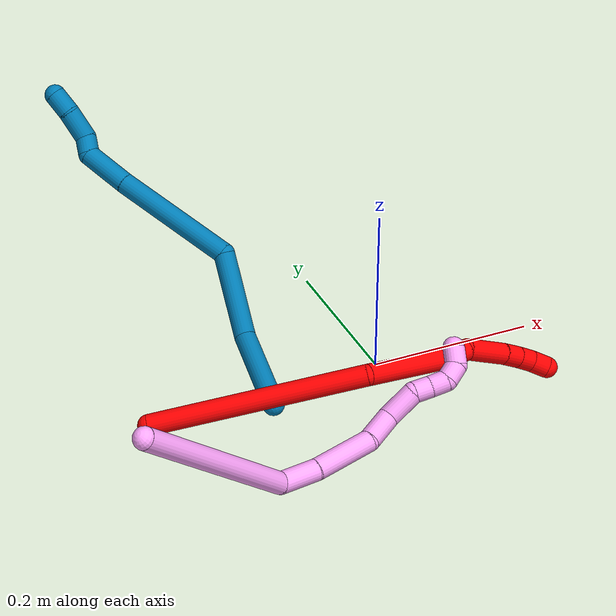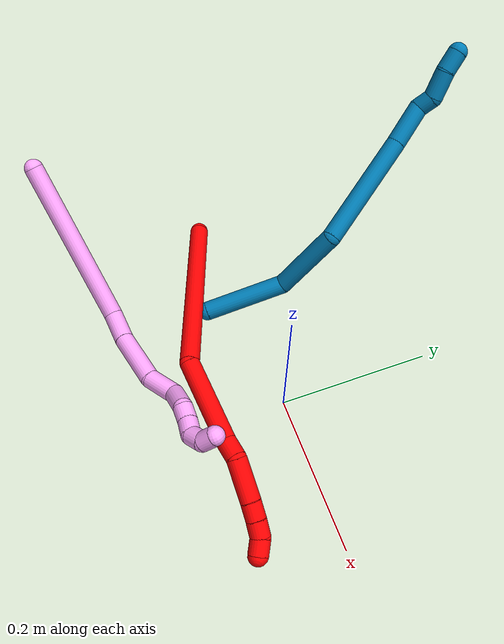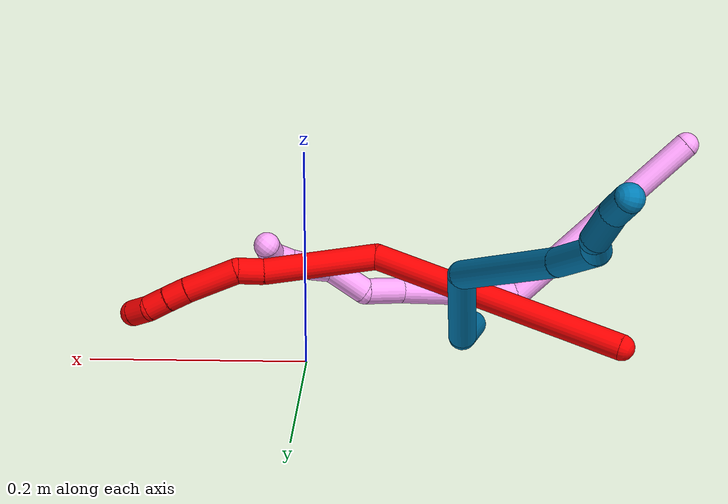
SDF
<sdf version="1.7">
 <world name="default">
  <model name="2">
   <static>0</static>
   <link name="2">
    <collision name="collision-cylinder-e_1_1_4">
     <pose>0.022367 -0.010055 -0.12348 3.06034 0.178619 2.28936</pose>
     <geometry><cylinder><radius>0.0125</radius><length>0.251782</length></cylinder></geometry>
     <surface>
      <friction><ode><mu>1.16</mu><mu2>1.16</mu2><slip1>0</slip1><slip2>0</slip2></ode></friction>
      <contact><ode><kp>1e+06</kp><kd>1</kd><max_vel>0</max_vel><min_depth>0.001</min_depth></ode></contact>
     </surface>
    </collision>
    <visual name="visual-cylinder-e_1_1_4">
     <pose>0.022367 -0.010055 -0.12348 3.06034 0.178619 2.28936</pose>
     <geometry><cylinder><radius>0.0125</radius><length>0.251782</length></cylinder></geometry>
     <material><ambient>1 0 0 1</ambient></material>
    </visual>
    <collision name="collision-cylinder-e_2_4_5">
     <pose>0.081506 -0.02117 -0.286753 3.11496 0.745778 3.07354</pose>
     <geometry><cylinder><radius>0.0125</radius><length>0.108385</length></cylinder></geometry>
     <surface>
      <friction><ode><mu>1.16</mu><mu2>1.16</mu2><slip1>0</slip1><slip2>0</slip2></ode></friction>
      <contact><ode><kp>1e+06</kp><kd>1</kd><max_vel>0</max_vel><min_depth>0.001</min_depth></ode></contact>
     </surface>
    </collision>
    <visual name="visual-cylinder-e_2_4_5">
     <pose>0.081506 -0.02117 -0.286753 3.11496 0.745778 3.07354</pose>
     <geometry><cylinder><radius>0.0125</radius><length>0.108385</length></cylinder></geometry>
     <material><ambient>1 0 0 1</ambient></material>
    </visual>
    <collision name="collision-cylinder-e_3_5_6">
     <pose>0.126254 -0.025073 -0.335954 2.84813 0.681747 2.35204</pose>
     <geometry><cylinder><radius>0.0125</radius><length>0.025313</length></cylinder></geometry>
     <surface>
      <friction><ode><mu>1.16</mu><mu2>1.16</mu2><slip1>0</slip1><slip2>0</slip2></ode></friction>
      <contact><ode><kp>1e+06</kp><kd>1</kd><max_vel>0</max_vel><min_depth>0.001</min_depth></ode></contact>
     </surface>
    </collision>
    <visual name="visual-cylinder-e_3_5_6">
     <pose>0.126254 -0.025073 -0.335954 2.84813 0.681747 2.35204</pose>
     <geometry><cylinder><radius>0.0125</radius><length>0.025313</length></cylinder></geometry>
     <material><ambient>1 0 0 1</ambient></material>
    </visual>
    <collision name="collision-cylinder-e_4_6_7">
     <pose>0.15253 -0.021431 -0.362414 -2.77824 0.786931 -2.30833</pose>
     <geometry><cylinder><radius>0.0125</radius><length>0.051683</length></cylinder></geometry>
     <surface>
      <friction><ode><mu>1.16</mu><mu2>1.16</mu2><slip1>0</slip1><slip2>0</slip2></ode></friction>
      <contact><ode><kp>1e+06</kp><kd>1</kd><max_vel>0</max_vel><min_depth>0.001</min_depth></ode></contact>
     </surface>
    </collision>
    <visual name="visual-cylinder-e_4_6_7">
     <pose>0.15253 -0.021431 -0.362414 -2.77824 0.786931 -2.30833</pose>
     <geometry><cylinder><radius>0.0125</radius><length>0.051683</length></cylinder></geometry>
     <material><ambient>1 0 0 1</ambient></material>
    </visual>
    <collision name="collision-cylinder-e_5_7_8">
     <pose>0.178447 -0.011502 -0.386229 -2.67039 0.787236 -2.09335</pose>
     <geometry><cylinder><radius>0.0125</radius><length>0.021504</length></cylinder></geometry>
     <surface>
      <friction><ode><mu>1.16</mu><mu2>1.16</mu2><slip1>0</slip1><slip2>0</slip2></ode></friction>
      <contact><ode><kp>1e+06</kp><kd>1</kd><max_vel>0</max_vel><min_depth>0.001</min_depth></ode></contact>
     </surface>
    </collision>
    <visual name="visual-cylinder-e_5_7_8">
     <pose>0.178447 -0.011502 -0.386229 -2.67039 0.787236 -2.09335</pose>
     <geometry><cylinder><radius>0.0125</radius><length>0.021504</length></cylinder></geometry>
     <material><ambient>1 0 0 1</ambient></material>
    </visual>
    <collision name="collision-cylinder-e_6_8_9">
     <pose>0.193201 -0.004169 -0.399595 -2.60947 0.749843 -1.93025</pose>
     <geometry><cylinder><radius>0.0125</radius><length>0.020945</length></cylinder></geometry>
     <surface>
      <friction><ode><mu>1.16</mu><mu2>1.16</mu2><slip1>0</slip1><slip2>0</slip2></ode></friction>
      <contact><ode><kp>1e+06</kp><kd>1</kd><max_vel>0</max_vel><min_depth>0.001</min_depth></ode></contact>
     </surface>
    </collision>
    <visual name="visual-cylinder-e_6_8_9">
     <pose>0.193201 -0.004169 -0.399595 -2.60947 0.749843 -1.93025</pose>
     <geometry><cylinder><radius>0.0125</radius><length>0.020945</length></cylinder></geometry>
     <material><ambient>1 0 0 1</ambient></material>
    </visual>
    <collision name="collision-cylinder-e_7_9_2">
     <pose>0.203844 0.004841 -0.414286 -2.57709 0.35113 -1.09797</pose>
     <geometry><cylinder><radius>0.0125</radius><length>0.020388</length></cylinder></geometry>
     <surface>
      <friction><ode><mu>1.16</mu><mu2>1.16</mu2><slip1>0</slip1><slip2>0</slip2></ode></friction>
      <contact><ode><kp>1e+06</kp><kd>1</kd><max_vel>0</max_vel><min_depth>0.001</min_depth></ode></contact>
     </surface>
    </collision>
    <visual name="visual-cylinder-e_7_9_2">
     <pose>0.203844 0.004841 -0.414286 -2.57709 0.35113 -1.09797</pose>
     <geometry><cylinder><radius>0.0125</radius><length>0.020388</length></cylinder></geometry>
     <material><ambient>1 0 0 1</ambient></material>
    </visual>
    <collision name="collision-sphere-2">
     <pose>0.207351 0.009962 -0.422373 0 -0 0</pose>
     <geometry><sphere><radius>0.0125</radius></sphere></geometry>
     <surface>
      <friction><ode><mu>1.16</mu><mu2>1.16</mu2><slip1>0</slip1><slip2>0</slip2></ode></friction>
      <contact><ode><kp>1e+06</kp><kd>1</kd><max_vel>0</max_vel><min_depth>0.001</min_depth></ode></contact>
     </surface>
    </collision>
    <visual name="visual-sphere-2">
     <pose>0.207351 0.009962 -0.422373 0 -0 0</pose>
     <geometry><sphere><radius>0.0125</radius></sphere></geometry>
     <material><ambient>1 0 0 1</ambient></material>
    </visual>
    <collision name="collision-sphere-9">
     <pose>0.200338 -0.00028 -0.406199 0 -0 0</pose>
     <geometry><sphere><radius>0.0125</radius></sphere></geometry>
     <surface>
      <friction><ode><mu>1.16</mu><mu2>1.16</mu2><slip1>0</slip1><slip2>0</slip2></ode></friction>
      <contact><ode><kp>1e+06</kp><kd>1</kd><max_vel>0</max_vel><min_depth>0.001</min_depth></ode></contact>
     </surface>
    </collision>
    <visual name="visual-sphere-9">
     <pose>0.200338 -0.00028 -0.406199 0 -0 0</pose>
     <geometry><sphere><radius>0.0125</radius></sphere></geometry>
     <material><ambient>1 0 0 1</ambient></material>
    </visual>
    <collision name="collision-sphere-4">
     <pose>0.044734 -0.02011 -0.246959 0 -0 0</pose>
     <geometry><sphere><radius>0.0125</radius></sphere></geometry>
     <surface>
      <friction><ode><mu>1.16</mu><mu2>1.16</mu2><slip1>0</slip1><slip2>0</slip2></ode></friction>
      <contact><ode><kp>1e+06</kp><kd>1</kd><max_vel>0</max_vel><min_depth>0.001</min_depth></ode></contact>
     </surface>
    </collision>
    <visual name="visual-sphere-4">
     <pose>0.044734 -0.02011 -0.246959 0 -0 0</pose>
     <geometry><sphere><radius>0.0125</radius></sphere></geometry>
     <material><ambient>1 0 0 1</ambient></material>
    </visual>
    <collision name="collision-sphere-1">
     <geometry><sphere><radius>0.0125</radius></sphere></geometry>
     <surface>
      <friction><ode><mu>1.16</mu><mu2>1.16</mu2><slip1>0</slip1><slip2>0</slip2></ode></friction>
      <contact><ode><kp>1e+06</kp><kd>1</kd><max_vel>0</max_vel><min_depth>0.001</min_depth></ode></contact>
     </surface>
    </collision>
    <visual name="visual-sphere-1">
     <geometry><sphere><radius>0.0125</radius></sphere></geometry>
     <material><ambient>1 0 0 1</ambient></material>
    </visual>
    <collision name="collision-sphere-8">
     <pose>0.186064 -0.008057 -0.392991 0 -0 0</pose>
     <geometry><sphere><radius>0.0125</radius></sphere></geometry>
     <surface>
      <friction><ode><mu>1.16</mu><mu2>1.16</mu2><slip1>0</slip1><slip2>0</slip2></ode></friction>
      <contact><ode><kp>1e+06</kp><kd>1</kd><max_vel>0</max_vel><min_depth>0.001</min_depth></ode></contact>
     </surface>
    </collision>
    <visual name="visual-sphere-8">
     <pose>0.186064 -0.008057 -0.392991 0 -0 0</pose>
     <geometry><sphere><radius>0.0125</radius></sphere></geometry>
     <material><ambient>1 0 0 1</ambient></material>
    </visual>
    <collision name="collision-sphere-5">
     <pose>0.118278 -0.02223 -0.326546 0 -0 0</pose>
     <geometry><sphere><radius>0.0125</radius></sphere></geometry>
     <surface>
      <friction><ode><mu>1.16</mu><mu2>1.16</mu2><slip1>0</slip1><slip2>0</slip2></ode></friction>
      <contact><ode><kp>1e+06</kp><kd>1</kd><max_vel>0</max_vel><min_depth>0.001</min_depth></ode></contact>
     </surface>
    </collision>
    <visual name="visual-sphere-5">
     <pose>0.118278 -0.02223 -0.326546 0 -0 0</pose>
     <geometry><sphere><radius>0.0125</radius></sphere></geometry>
     <material><ambient>1 0 0 1</ambient></material>
    </visual>
    <collision name="collision-sphere-6">
     <pose>0.134229 -0.027915 -0.345361 0 -0 0</pose>
     <geometry><sphere><radius>0.0125</radius></sphere></geometry>
     <surface>
      <friction><ode><mu>1.16</mu><mu2>1.16</mu2><slip1>0</slip1><slip2>0</slip2></ode></friction>
      <contact><ode><kp>1e+06</kp><kd>1</kd><max_vel>0</max_vel><min_depth>0.001</min_depth></ode></contact>
     </surface>
    </collision>
    <visual name="visual-sphere-6">
     <pose>0.134229 -0.027915 -0.345361 0 -0 0</pose>
     <geometry><sphere><radius>0.0125</radius></sphere></geometry>
     <material><ambient>1 0 0 1</ambient></material>
    </visual>
    <collision name="collision-sphere-7">
     <pose>0.170831 -0.014947 -0.379468 0 -0 0</pose>
     <geometry><sphere><radius>0.0125</radius></sphere></geometry>
     <surface>
      <friction><ode><mu>1.16</mu><mu2>1.16</mu2><slip1>0</slip1><slip2>0</slip2></ode></friction>
      <contact><ode><kp>1e+06</kp><kd>1</kd><max_vel>0</max_vel><min_depth>0.001</min_depth></ode></contact>
     </surface>
    </collision>
    <visual name="visual-sphere-7">
     <pose>0.170831 -0.014947 -0.379468 0 -0 0</pose>
     <geometry><sphere><radius>0.0125</radius></sphere></geometry>
     <material><ambient>1 0 0 1</ambient></material>
    </visual>
    <inertial>
     <pose>0.075169 -0.013609 -0.229051 0 -0 0</pose>
     <mass>0.5</mass>
     <inertia>
      <ixx>4.8e-05</ixx>
      <ixy>0</ixy>
      <ixz>0</ixz>
      <iyy>0.002008</iyy>
      <iyz>0</iyz>
      <izz>-0.000255</izz>
     </inertia>
    </inertial>
   </link>
   <pose>-0.290626 -0.018772 0.011495 -1.86363 0.496696 0.87276</pose>
  </model>
  <model name="4">
   <static>0</static>
   <link name="4">
    <collision name="collision-cylinder-e_1_1_4">
     <pose>0.017751 0.008424 -0.108234 -3.06392 0.162075 -2.24909</pose>
     <geometry><cylinder><radius>0.0125</radius><length>0.220007</length></cylinder></geometry>
     <surface>
      <friction><ode><mu>1.16</mu><mu2>1.16</mu2><slip1>0</slip1><slip2>0</slip2></ode></friction>
      <contact><ode><kp>1e+06</kp><kd>1</kd><max_vel>0</max_vel><min_depth>0.001</min_depth></ode></contact>
     </surface>
    </collision>
    <visual name="visual-cylinder-e_1_1_4">
     <pose>0.017751 0.008424 -0.108234 -3.06392 0.162075 -2.24909</pose>
     <geometry><cylinder><radius>0.0125</radius><length>0.220007</length></cylinder></geometry>
     <material><ambient>1 0.65098 0.996078 1</ambient></material>
    </visual>
    <collision name="collision-cylinder-e_2_4_5">
     <pose>0.052619 0.021267 -0.229801 -2.82155 0.883674 -2.48394</pose>
     <geometry><cylinder><radius>0.0125</radius><length>0.044284</length></cylinder></geometry>
     <surface>
      <friction><ode><mu>1.16</mu><mu2>1.16</mu2><slip1>0</slip1><slip2>0</slip2></ode></friction>
      <contact><ode><kp>1e+06</kp><kd>1</kd><max_vel>0</max_vel><min_depth>0.001</min_depth></ode></contact>
     </surface>
    </collision>
    <visual name="visual-cylinder-e_2_4_5">
     <pose>0.052619 0.021267 -0.229801 -2.82155 0.883674 -2.48394</pose>
     <geometry><cylinder><radius>0.0125</radius><length>0.044284</length></cylinder></geometry>
     <material><ambient>1 0.65098 0.996078 1</ambient></material>
    </visual>
    <collision name="collision-cylinder-e_3_5_6">
     <pose>0.096786 0.037848 -0.263599 -2.6054 0.849065 -2.04941</pose>
     <geometry><cylinder><radius>0.0125</radius><length>0.072068</length></cylinder></geometry>
     <surface>
      <friction><ode><mu>1.16</mu><mu2>1.16</mu2><slip1>0</slip1><slip2>0</slip2></ode></friction>
      <contact><ode><kp>1e+06</kp><kd>1</kd><max_vel>0</max_vel><min_depth>0.001</min_depth></ode></contact>
     </surface>
    </collision>
    <visual name="visual-cylinder-e_3_5_6">
     <pose>0.096786 0.037848 -0.263599 -2.6054 0.849065 -2.04941</pose>
     <geometry><cylinder><radius>0.0125</radius><length>0.072068</length></cylinder></geometry>
     <material><ambient>1 0.65098 0.996078 1</ambient></material>
    </visual>
    <collision name="collision-cylinder-e_4_6_7">
     <pose>0.135895 0.06347 -0.294251 -2.21862 0.620346 -1.14502</pose>
     <geometry><cylinder><radius>0.0125</radius><length>0.04149</length></cylinder></geometry>
     <surface>
      <friction><ode><mu>1.16</mu><mu2>1.16</mu2><slip1>0</slip1><slip2>0</slip2></ode></friction>
      <contact><ode><kp>1e+06</kp><kd>1</kd><max_vel>0</max_vel><min_depth>0.001</min_depth></ode></contact>
     </surface>
    </collision>
    <visual name="visual-cylinder-e_4_6_7">
     <pose>0.135895 0.06347 -0.294251 -2.21862 0.620346 -1.14502</pose>
     <geometry><cylinder><radius>0.0125</radius><length>0.04149</length></cylinder></geometry>
     <material><ambient>1 0.65098 0.996078 1</ambient></material>
    </visual>
    <collision name="collision-cylinder-e_5_7_8">
     <pose>0.166492 0.083304 -0.305696 -1.76585 1.23365 -1.42391</pose>
     <geometry><cylinder><radius>0.0125</radius><length>0.039288</length></cylinder></geometry>
     <surface>
      <friction><ode><mu>1.16</mu><mu2>1.16</mu2><slip1>0</slip1><slip2>0</slip2></ode></friction>
      <contact><ode><kp>1e+06</kp><kd>1</kd><max_vel>0</max_vel><min_depth>0.001</min_depth></ode></contact>
     </surface>
    </collision>
    <visual name="visual-cylinder-e_5_7_8">
     <pose>0.166492 0.083304 -0.305696 -1.76585 1.23365 -1.42391</pose>
     <geometry><cylinder><radius>0.0125</radius><length>0.039288</length></cylinder></geometry>
     <material><ambient>1 0.65098 0.996078 1</ambient></material>
    </visual>
    <collision name="collision-cylinder-e_6_8_9">
     <pose>0.193544 0.090982 -0.312537 -2.91229 0.978301 -2.71548</pose>
     <geometry><cylinder><radius>0.0125</radius><length>0.020525</length></cylinder></geometry>
     <surface>
      <friction><ode><mu>1.16</mu><mu2>1.16</mu2><slip1>0</slip1><slip2>0</slip2></ode></friction>
      <contact><ode><kp>1e+06</kp><kd>1</kd><max_vel>0</max_vel><min_depth>0.001</min_depth></ode></contact>
     </surface>
    </collision>
    <visual name="visual-cylinder-e_6_8_9">
     <pose>0.193544 0.090982 -0.312537 -2.91229 0.978301 -2.71548</pose>
     <geometry><cylinder><radius>0.0125</radius><length>0.020525</length></cylinder></geometry>
     <material><ambient>1 0.65098 0.996078 1</ambient></material>
    </visual>
    <collision name="collision-cylinder-e_7_9_10">
     <pose>0.211331 0.093038 -0.322435 -2.96891 1.12933 -2.87</pose>
     <geometry><cylinder><radius>0.0125</radius><length>0.020516</length></cylinder></geometry>
     <surface>
      <friction><ode><mu>1.16</mu><mu2>1.16</mu2><slip1>0</slip1><slip2>0</slip2></ode></friction>
      <contact><ode><kp>1e+06</kp><kd>1</kd><max_vel>0</max_vel><min_depth>0.001</min_depth></ode></contact>
     </surface>
    </collision>
    <visual name="visual-cylinder-e_7_9_10">
     <pose>0.211331 0.093038 -0.322435 -2.96891 1.12933 -2.87</pose>
     <geometry><cylinder><radius>0.0125</radius><length>0.020516</length></cylinder></geometry>
     <material><ambient>1 0.65098 0.996078 1</ambient></material>
    </visual>
    <collision name="collision-cylinder-e_8_10_11">
     <pose>0.228487 0.100504 -0.328885 -1.8783 0.841484 -1.0978</pose>
     <geometry><cylinder><radius>0.0125</radius><length>0.021141</length></cylinder></geometry>
     <surface>
      <friction><ode><mu>1.16</mu><mu2>1.16</mu2><slip1>0</slip1><slip2>0</slip2></ode></friction>
      <contact><ode><kp>1e+06</kp><kd>1</kd><max_vel>0</max_vel><min_depth>0.001</min_depth></ode></contact>
     </surface>
    </collision>
    <visual name="visual-cylinder-e_8_10_11">
     <pose>0.228487 0.100504 -0.328885 -1.8783 0.841484 -1.0978</pose>
     <geometry><cylinder><radius>0.0125</radius><length>0.021141</length></cylinder></geometry>
     <material><ambient>1 0.65098 0.996078 1</ambient></material>
    </visual>
    <collision name="collision-cylinder-e_9_11_2">
     <pose>0.239925 0.116452 -0.328015 -1.25654 0.351027 -0.25625</pose>
     <geometry><cylinder><radius>0.0125</radius><length>0.020682</length></cylinder></geometry>
     <surface>
      <friction><ode><mu>1.16</mu><mu2>1.16</mu2><slip1>0</slip1><slip2>0</slip2></ode></friction>
      <contact><ode><kp>1e+06</kp><kd>1</kd><max_vel>0</max_vel><min_depth>0.001</min_depth></ode></contact>
     </surface>
    </collision>
    <visual name="visual-cylinder-e_9_11_2">
     <pose>0.239925 0.116452 -0.328015 -1.25654 0.351027 -0.25625</pose>
     <geometry><cylinder><radius>0.0125</radius><length>0.020682</length></cylinder></geometry>
     <material><ambient>1 0.65098 0.996078 1</ambient></material>
    </visual>
    <collision name="collision-sphere-2">
     <pose>0.243481 0.125687 -0.325014 0 -0 0</pose>
     <geometry><sphere><radius>0.0125</radius></sphere></geometry>
     <surface>
      <friction><ode><mu>1.16</mu><mu2>1.16</mu2><slip1>0</slip1><slip2>0</slip2></ode></friction>
      <contact><ode><kp>1e+06</kp><kd>1</kd><max_vel>0</max_vel><min_depth>0.001</min_depth></ode></contact>
     </surface>
    </collision>
    <visual name="visual-sphere-2">
     <pose>0.243481 0.125687 -0.325014 0 -0 0</pose>
     <geometry><sphere><radius>0.0125</radius></sphere></geometry>
     <material><ambient>1 0.65098 0.996078 1</ambient></material>
    </visual>
    <collision name="collision-sphere-11">
     <pose>0.236369 0.107217 -0.331017 0 -0 0</pose>
     <geometry><sphere><radius>0.0125</radius></sphere></geometry>
     <surface>
      <friction><ode><mu>1.16</mu><mu2>1.16</mu2><slip1>0</slip1><slip2>0</slip2></ode></friction>
      <contact><ode><kp>1e+06</kp><kd>1</kd><max_vel>0</max_vel><min_depth>0.001</min_depth></ode></contact>
     </surface>
    </collision>
    <visual name="visual-sphere-11">
     <pose>0.236369 0.107217 -0.331017 0 -0 0</pose>
     <geometry><sphere><radius>0.0125</radius></sphere></geometry>
     <material><ambient>1 0.65098 0.996078 1</ambient></material>
    </visual>
    <collision name="collision-sphere-10">
     <pose>0.220606 0.093791 -0.326753 0 -0 0</pose>
     <geometry><sphere><radius>0.0125</radius></sphere></geometry>
     <surface>
      <friction><ode><mu>1.16</mu><mu2>1.16</mu2><slip1>0</slip1><slip2>0</slip2></ode></friction>
      <contact><ode><kp>1e+06</kp><kd>1</kd><max_vel>0</max_vel><min_depth>0.001</min_depth></ode></contact>
     </surface>
    </collision>
    <visual name="visual-sphere-10">
     <pose>0.220606 0.093791 -0.326753 0 -0 0</pose>
     <geometry><sphere><radius>0.0125</radius></sphere></geometry>
     <material><ambient>1 0.65098 0.996078 1</ambient></material>
    </visual>
    <collision name="collision-sphere-9">
     <pose>0.202057 0.092285 -0.318118 0 -0 0</pose>
     <geometry><sphere><radius>0.0125</radius></sphere></geometry>
     <surface>
      <friction><ode><mu>1.16</mu><mu2>1.16</mu2><slip1>0</slip1><slip2>0</slip2></ode></friction>
      <contact><ode><kp>1e+06</kp><kd>1</kd><max_vel>0</max_vel><min_depth>0.001</min_depth></ode></contact>
     </surface>
    </collision>
    <visual name="visual-sphere-9">
     <pose>0.202057 0.092285 -0.318118 0 -0 0</pose>
     <geometry><sphere><radius>0.0125</radius></sphere></geometry>
     <material><ambient>1 0.65098 0.996078 1</ambient></material>
    </visual>
    <collision name="collision-sphere-4">
     <pose>0.035502 0.016848 -0.216469 0 -0 0</pose>
     <geometry><sphere><radius>0.0125</radius></sphere></geometry>
     <surface>
      <friction><ode><mu>1.16</mu><mu2>1.16</mu2><slip1>0</slip1><slip2>0</slip2></ode></friction>
      <contact><ode><kp>1e+06</kp><kd>1</kd><max_vel>0</max_vel><min_depth>0.001</min_depth></ode></contact>
     </surface>
    </collision>
    <visual name="visual-sphere-4">
     <pose>0.035502 0.016848 -0.216469 0 -0 0</pose>
     <geometry><sphere><radius>0.0125</radius></sphere></geometry>
     <material><ambient>1 0.65098 0.996078 1</ambient></material>
    </visual>
    <collision name="collision-sphere-1">
     <geometry><sphere><radius>0.0125</radius></sphere></geometry>
     <surface>
      <friction><ode><mu>1.16</mu><mu2>1.16</mu2><slip1>0</slip1><slip2>0</slip2></ode></friction>
      <contact><ode><kp>1e+06</kp><kd>1</kd><max_vel>0</max_vel><min_depth>0.001</min_depth></ode></contact>
     </surface>
    </collision>
    <visual name="visual-sphere-1">
     <geometry><sphere><radius>0.0125</radius></sphere></geometry>
     <material><ambient>1 0.65098 0.996078 1</ambient></material>
    </visual>
    <collision name="collision-sphere-8">
     <pose>0.18503 0.089679 -0.306956 0 -0 0</pose>
     <geometry><sphere><radius>0.0125</radius></sphere></geometry>
     <surface>
      <friction><ode><mu>1.16</mu><mu2>1.16</mu2><slip1>0</slip1><slip2>0</slip2></ode></friction>
      <contact><ode><kp>1e+06</kp><kd>1</kd><max_vel>0</max_vel><min_depth>0.001</min_depth></ode></contact>
     </surface>
    </collision>
    <visual name="visual-sphere-8">
     <pose>0.18503 0.089679 -0.306956 0 -0 0</pose>
     <geometry><sphere><radius>0.0125</radius></sphere></geometry>
     <material><ambient>1 0.65098 0.996078 1</ambient></material>
    </visual>
    <collision name="collision-sphere-5">
     <pose>0.069737 0.025685 -0.243132 0 -0 0</pose>
     <geometry><sphere><radius>0.0125</radius></sphere></geometry>
     <surface>
      <friction><ode><mu>1.16</mu><mu2>1.16</mu2><slip1>0</slip1><slip2>0</slip2></ode></friction>
      <contact><ode><kp>1e+06</kp><kd>1</kd><max_vel>0</max_vel><min_depth>0.001</min_depth></ode></contact>
     </surface>
    </collision>
    <visual name="visual-sphere-5">
     <pose>0.069737 0.025685 -0.243132 0 -0 0</pose>
     <geometry><sphere><radius>0.0125</radius></sphere></geometry>
     <material><ambient>1 0.65098 0.996078 1</ambient></material>
    </visual>
    <collision name="collision-sphere-6">
     <pose>0.123836 0.05001 -0.284065 0 -0 0</pose>
     <geometry><sphere><radius>0.0125</radius></sphere></geometry>
     <surface>
      <friction><ode><mu>1.16</mu><mu2>1.16</mu2><slip1>0</slip1><slip2>0</slip2></ode></friction>
      <contact><ode><kp>1e+06</kp><kd>1</kd><max_vel>0</max_vel><min_depth>0.001</min_depth></ode></contact>
     </surface>
    </collision>
    <visual name="visual-sphere-6">
     <pose>0.123836 0.05001 -0.284065 0 -0 0</pose>
     <geometry><sphere><radius>0.0125</radius></sphere></geometry>
     <material><ambient>1 0.65098 0.996078 1</ambient></material>
    </visual>
    <collision name="collision-sphere-7">
     <pose>0.147954 0.076929 -0.304437 0 -0 0</pose>
     <geometry><sphere><radius>0.0125</radius></sphere></geometry>
     <surface>
      <friction><ode><mu>1.16</mu><mu2>1.16</mu2><slip1>0</slip1><slip2>0</slip2></ode></friction>
      <contact><ode><kp>1e+06</kp><kd>1</kd><max_vel>0</max_vel><min_depth>0.001</min_depth></ode></contact>
     </surface>
    </collision>
    <visual name="visual-sphere-7">
     <pose>0.147954 0.076929 -0.304437 0 -0 0</pose>
     <geometry><sphere><radius>0.0125</radius></sphere></geometry>
     <material><ambient>1 0.65098 0.996078 1</ambient></material>
    </visual>
    <inertial>
     <pose>0.086981 0.039477 -0.207942 0 -0 0</pose>
     <mass>0.5</mass>
     <inertia>
      <ixx>-0.001269</ixx>
      <ixy>0</ixy>
      <ixz>0</ixz>
      <iyy>-9.8e-05</iyy>
      <iyz>0</iyz>
      <izz>-0.000309</izz>
     </inertia>
    </inertial>
   </link>
   <pose>-0.359879 -0.216969 0.152343 0.37008 -0.605317 -0.327565</pose>
  </model>
  <model name="9">
   <static>0</static>
   <link name="9">
    <collision name="collision-cylinder-e_1_1_4">
     <pose>0.007696 0.041526 0.033778 -0.887936 0.142799 -0.06801</pose>
     <geometry><cylinder><radius>0.0125</radius><length>0.108159</length></cylinder></geometry>
     <surface>
      <friction><ode><mu>1.16</mu><mu2>1.16</mu2><slip1>0</slip1><slip2>0</slip2></ode></friction>
      <contact><ode><kp>1e+06</kp><kd>1</kd><max_vel>0</max_vel><min_depth>0.001</min_depth></ode></contact>
     </surface>
    </collision>
    <visual name="visual-cylinder-e_1_1_4">
     <pose>0.007696 0.041526 0.033778 -0.887936 0.142799 -0.06801</pose>
     <geometry><cylinder><radius>0.0125</radius><length>0.108159</length></cylinder></geometry>
     <material><ambient>0 0.490196 0.709804 1</ambient></material>
    </visual>
    <collision name="collision-cylinder-e_2_4_5">
     <pose>-0.009335 0.117128 0.0945 -0.901734 -0.517479 0.25488</pose>
     <geometry><cylinder><radius>0.0125</radius><length>0.099971</length></cylinder></geometry>
     <surface>
      <friction><ode><mu>1.16</mu><mu2>1.16</mu2><slip1>0</slip1><slip2>0</slip2></ode></friction>
      <contact><ode><kp>1e+06</kp><kd>1</kd><max_vel>0</max_vel><min_depth>0.001</min_depth></ode></contact>
     </surface>
    </collision>
    <visual name="visual-cylinder-e_2_4_5">
     <pose>-0.009335 0.117128 0.0945 -0.901734 -0.517479 0.25488</pose>
     <geometry><cylinder><radius>0.0125</radius><length>0.099971</length></cylinder></geometry>
     <material><ambient>0 0.490196 0.709804 1</ambient></material>
    </visual>
    <collision name="collision-cylinder-e_3_5_6">
     <pose>-0.039123 0.226296 0.126901 -1.49825 -0.067108 0.062411</pose>
     <geometry><cylinder><radius>0.0125</radius><length>0.150921</length></cylinder></geometry>
     <surface>
      <friction><ode><mu>1.16</mu><mu2>1.16</mu2><slip1>0</slip1><slip2>0</slip2></ode></friction>
      <contact><ode><kp>1e+06</kp><kd>1</kd><max_vel>0</max_vel><min_depth>0.001</min_depth></ode></contact>
     </surface>
    </collision>
    <visual name="visual-cylinder-e_3_5_6">
     <pose>-0.039123 0.226296 0.126901 -1.49825 -0.067108 0.062411</pose>
     <geometry><cylinder><radius>0.0125</radius><length>0.150921</length></cylinder></geometry>
     <material><ambient>0 0.490196 0.709804 1</ambient></material>
    </visual>
    <collision name="collision-cylinder-e_4_6_7">
     <pose>-0.048438 0.329161 0.134685 -1.48722 -0.151509 0.139389</pose>
     <geometry><cylinder><radius>0.0125</radius><length>0.056385</length></cylinder></geometry>
     <surface>
      <friction><ode><mu>1.16</mu><mu2>1.16</mu2><slip1>0</slip1><slip2>0</slip2></ode></friction>
      <contact><ode><kp>1e+06</kp><kd>1</kd><max_vel>0</max_vel><min_depth>0.001</min_depth></ode></contact>
     </surface>
    </collision>
    <visual name="visual-cylinder-e_4_6_7">
     <pose>-0.048438 0.329161 0.134685 -1.48722 -0.151509 0.139389</pose>
     <geometry><cylinder><radius>0.0125</radius><length>0.056385</length></cylinder></geometry>
     <material><ambient>0 0.490196 0.709804 1</ambient></material>
    </visual>
    <collision name="collision-cylinder-e_5_7_8">
     <pose>-0.05618 0.364436 0.144166 -0.809219 -0.324473 0.139955</pose>
     <geometry><cylinder><radius>0.0125</radius><length>0.021875</length></cylinder></geometry>
     <surface>
      <friction><ode><mu>1.16</mu><mu2>1.16</mu2><slip1>0</slip1><slip2>0</slip2></ode></friction>
      <contact><ode><kp>1e+06</kp><kd>1</kd><max_vel>0</max_vel><min_depth>0.001</min_depth></ode></contact>
     </surface>
    </collision>
    <visual name="visual-cylinder-e_5_7_8">
     <pose>-0.05618 0.364436 0.144166 -0.809219 -0.324473 0.139955</pose>
     <geometry><cylinder><radius>0.0125</radius><length>0.021875</length></cylinder></geometry>
     <material><ambient>0 0.490196 0.709804 1</ambient></material>
    </visual>
    <collision name="collision-cylinder-e_6_8_9">
     <pose>-0.069723 0.386228 0.154424 -1.35685 -0.602433 0.490747</pose>
     <geometry><cylinder><radius>0.0125</radius><length>0.035493</length></cylinder></geometry>
     <surface>
      <friction><ode><mu>1.16</mu><mu2>1.16</mu2><slip1>0</slip1><slip2>0</slip2></ode></friction>
      <contact><ode><kp>1e+06</kp><kd>1</kd><max_vel>0</max_vel><min_depth>0.001</min_depth></ode></contact>
     </surface>
    </collision>
    <visual name="visual-cylinder-e_6_8_9">
     <pose>-0.069723 0.386228 0.154424 -1.35685 -0.602433 0.490747</pose>
     <geometry><cylinder><radius>0.0125</radius><length>0.035493</length></cylinder></geometry>
     <material><ambient>0 0.490196 0.709804 1</ambient></material>
    </visual>
    <collision name="collision-cylinder-e_7_9_2">
     <pose>-0.084734 0.412867 0.160325 -1.34813 -0.372996 0.299233</pose>
     <geometry><cylinder><radius>0.0125</radius><length>0.027195</length></cylinder></geometry>
     <surface>
      <friction><ode><mu>1.16</mu><mu2>1.16</mu2><slip1>0</slip1><slip2>0</slip2></ode></friction>
      <contact><ode><kp>1e+06</kp><kd>1</kd><max_vel>0</max_vel><min_depth>0.001</min_depth></ode></contact>
     </surface>
    </collision>
    <visual name="visual-cylinder-e_7_9_2">
     <pose>-0.084734 0.412867 0.160325 -1.34813 -0.372996 0.299233</pose>
     <geometry><cylinder><radius>0.0125</radius><length>0.027195</length></cylinder></geometry>
     <material><ambient>0 0.490196 0.709804 1</ambient></material>
    </visual>
    <collision name="collision-sphere-2">
     <pose>-0.089689 0.425217 0.163121 0 -0 0</pose>
     <geometry><sphere><radius>0.0125</radius></sphere></geometry>
     <surface>
      <friction><ode><mu>1.16</mu><mu2>1.16</mu2><slip1>0</slip1><slip2>0</slip2></ode></friction>
      <contact><ode><kp>1e+06</kp><kd>1</kd><max_vel>0</max_vel><min_depth>0.001</min_depth></ode></contact>
     </surface>
    </collision>
    <visual name="visual-sphere-2">
     <pose>-0.089689 0.425217 0.163121 0 -0 0</pose>
     <geometry><sphere><radius>0.0125</radius></sphere></geometry>
     <material><ambient>0 0.490196 0.709804 1</ambient></material>
    </visual>
    <collision name="collision-sphere-9">
     <pose>-0.079779 0.400517 0.157529 0 -0 0</pose>
     <geometry><sphere><radius>0.0125</radius></sphere></geometry>
     <surface>
      <friction><ode><mu>1.16</mu><mu2>1.16</mu2><slip1>0</slip1><slip2>0</slip2></ode></friction>
      <contact><ode><kp>1e+06</kp><kd>1</kd><max_vel>0</max_vel><min_depth>0.001</min_depth></ode></contact>
     </surface>
    </collision>
    <visual name="visual-sphere-9">
     <pose>-0.079779 0.400517 0.157529 0 -0 0</pose>
     <geometry><sphere><radius>0.0125</radius></sphere></geometry>
     <material><ambient>0 0.490196 0.709804 1</ambient></material>
    </visual>
    <collision name="collision-sphere-4">
     <pose>0.015393 0.083053 0.067555 0 -0 0</pose>
     <geometry><sphere><radius>0.0125</radius></sphere></geometry>
     <surface>
      <friction><ode><mu>1.16</mu><mu2>1.16</mu2><slip1>0</slip1><slip2>0</slip2></ode></friction>
      <contact><ode><kp>1e+06</kp><kd>1</kd><max_vel>0</max_vel><min_depth>0.001</min_depth></ode></contact>
     </surface>
    </collision>
    <visual name="visual-sphere-4">
     <pose>0.015393 0.083053 0.067555 0 -0 0</pose>
     <geometry><sphere><radius>0.0125</radius></sphere></geometry>
     <material><ambient>0 0.490196 0.709804 1</ambient></material>
    </visual>
    <collision name="collision-sphere-1">
     <geometry><sphere><radius>0.0125</radius></sphere></geometry>
     <surface>
      <friction><ode><mu>1.16</mu><mu2>1.16</mu2><slip1>0</slip1><slip2>0</slip2></ode></friction>
      <contact><ode><kp>1e+06</kp><kd>1</kd><max_vel>0</max_vel><min_depth>0.001</min_depth></ode></contact>
     </surface>
    </collision>
    <visual name="visual-sphere-1">
     <geometry><sphere><radius>0.0125</radius></sphere></geometry>
     <material><ambient>0 0.490196 0.709804 1</ambient></material>
    </visual>
    <collision name="collision-sphere-8">
     <pose>-0.059667 0.371939 0.151319 0 -0 0</pose>
     <geometry><sphere><radius>0.0125</radius></sphere></geometry>
     <surface>
      <friction><ode><mu>1.16</mu><mu2>1.16</mu2><slip1>0</slip1><slip2>0</slip2></ode></friction>
      <contact><ode><kp>1e+06</kp><kd>1</kd><max_vel>0</max_vel><min_depth>0.001</min_depth></ode></contact>
     </surface>
    </collision>
    <visual name="visual-sphere-8">
     <pose>-0.059667 0.371939 0.151319 0 -0 0</pose>
     <geometry><sphere><radius>0.0125</radius></sphere></geometry>
     <material><ambient>0 0.490196 0.709804 1</ambient></material>
    </visual>
    <collision name="collision-sphere-5">
     <pose>-0.034062 0.151203 0.121444 0 -0 0</pose>
     <geometry><sphere><radius>0.0125</radius></sphere></geometry>
     <surface>
      <friction><ode><mu>1.16</mu><mu2>1.16</mu2><slip1>0</slip1><slip2>0</slip2></ode></friction>
      <contact><ode><kp>1e+06</kp><kd>1</kd><max_vel>0</max_vel><min_depth>0.001</min_depth></ode></contact>
     </surface>
    </collision>
    <visual name="visual-sphere-5">
     <pose>-0.034062 0.151203 0.121444 0 -0 0</pose>
     <geometry><sphere><radius>0.0125</radius></sphere></geometry>
     <material><ambient>0 0.490196 0.709804 1</ambient></material>
    </visual>
    <collision name="collision-sphere-6">
     <pose>-0.044183 0.301389 0.132359 0 -0 0</pose>
     <geometry><sphere><radius>0.0125</radius></sphere></geometry>
     <surface>
      <friction><ode><mu>1.16</mu><mu2>1.16</mu2><slip1>0</slip1><slip2>0</slip2></ode></friction>
      <contact><ode><kp>1e+06</kp><kd>1</kd><max_vel>0</max_vel><min_depth>0.001</min_depth></ode></contact>
     </surface>
    </collision>
    <visual name="visual-sphere-6">
     <pose>-0.044183 0.301389 0.132359 0 -0 0</pose>
     <geometry><sphere><radius>0.0125</radius></sphere></geometry>
     <material><ambient>0 0.490196 0.709804 1</ambient></material>
    </visual>
    <collision name="collision-sphere-7">
     <pose>-0.052693 0.356933 0.137012 0 -0 0</pose>
     <geometry><sphere><radius>0.0125</radius></sphere></geometry>
     <surface>
      <friction><ode><mu>1.16</mu><mu2>1.16</mu2><slip1>0</slip1><slip2>0</slip2></ode></friction>
      <contact><ode><kp>1e+06</kp><kd>1</kd><max_vel>0</max_vel><min_depth>0.001</min_depth></ode></contact>
     </surface>
    </collision>
    <visual name="visual-sphere-7">
     <pose>-0.052693 0.356933 0.137012 0 -0 0</pose>
     <geometry><sphere><radius>0.0125</radius></sphere></geometry>
     <material><ambient>0 0.490196 0.709804 1</ambient></material>
    </visual>
    <inertial>
     <pose>-0.029489 0.203644 0.105683 0 -0 0</pose>
     <mass>0.5</mass>
     <inertia>
      <ixx>0.000526</ixx>
      <ixy>0</ixy>
      <ixz>0</ixz>
      <iyy>0.000228</iyy>
      <iyz>0</iyz>
      <izz>-0.000392</izz>
     </inertia>
    </inertial>
   </link>
   <pose>-0.152634 -0.051602 0.021089 0.74957 1.19113 1.34657</pose>
  </model>
 </world>
</sdf>
